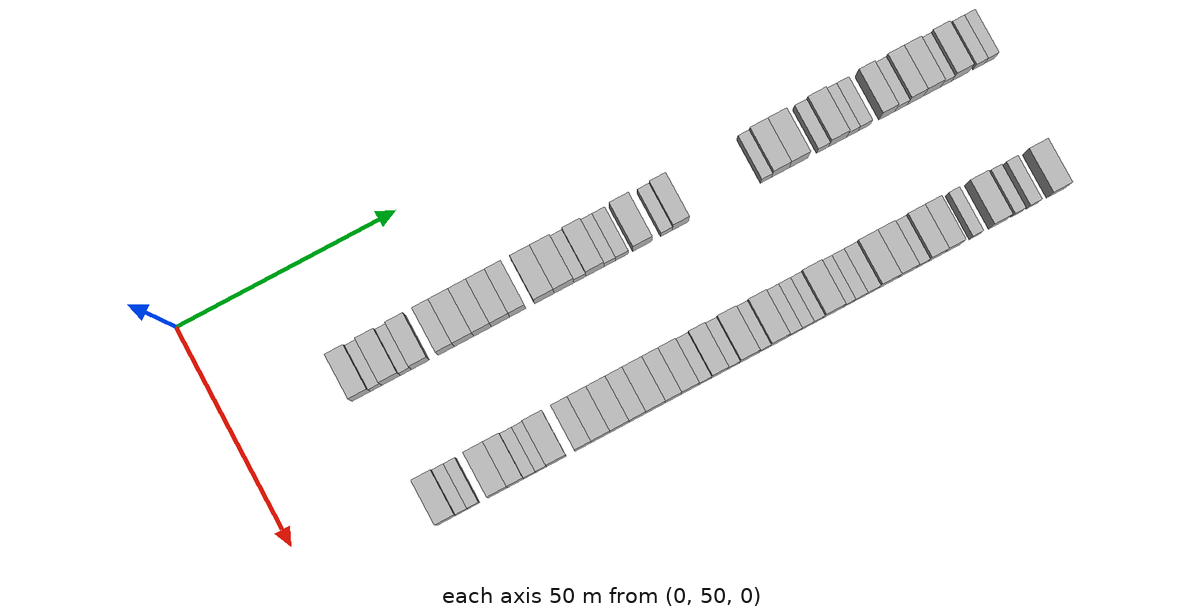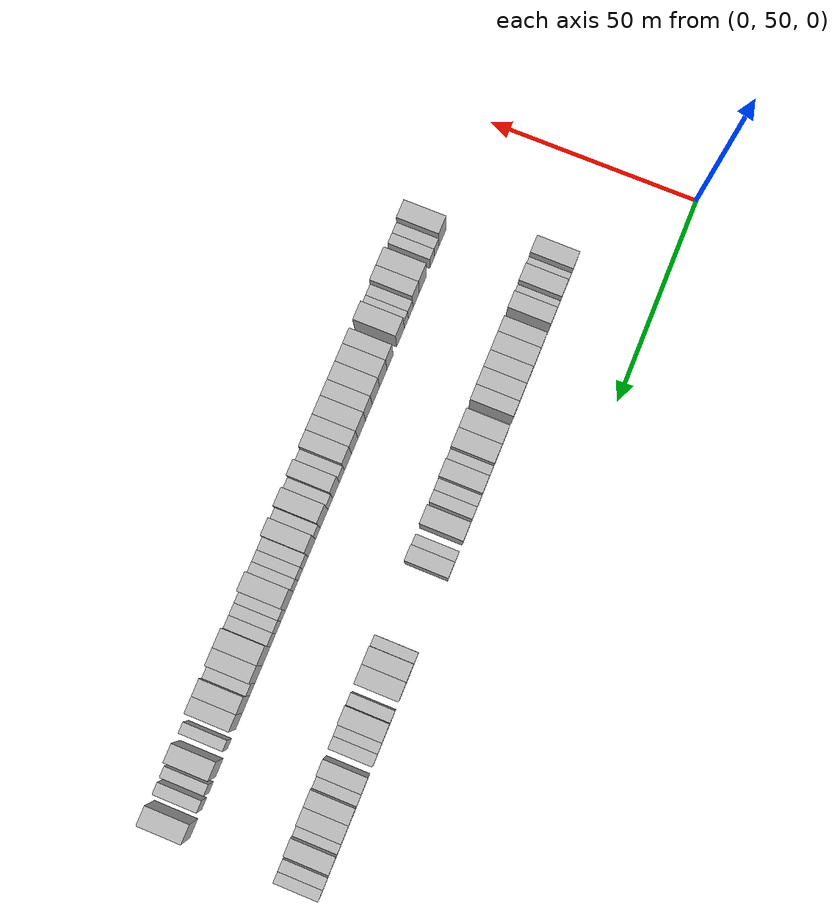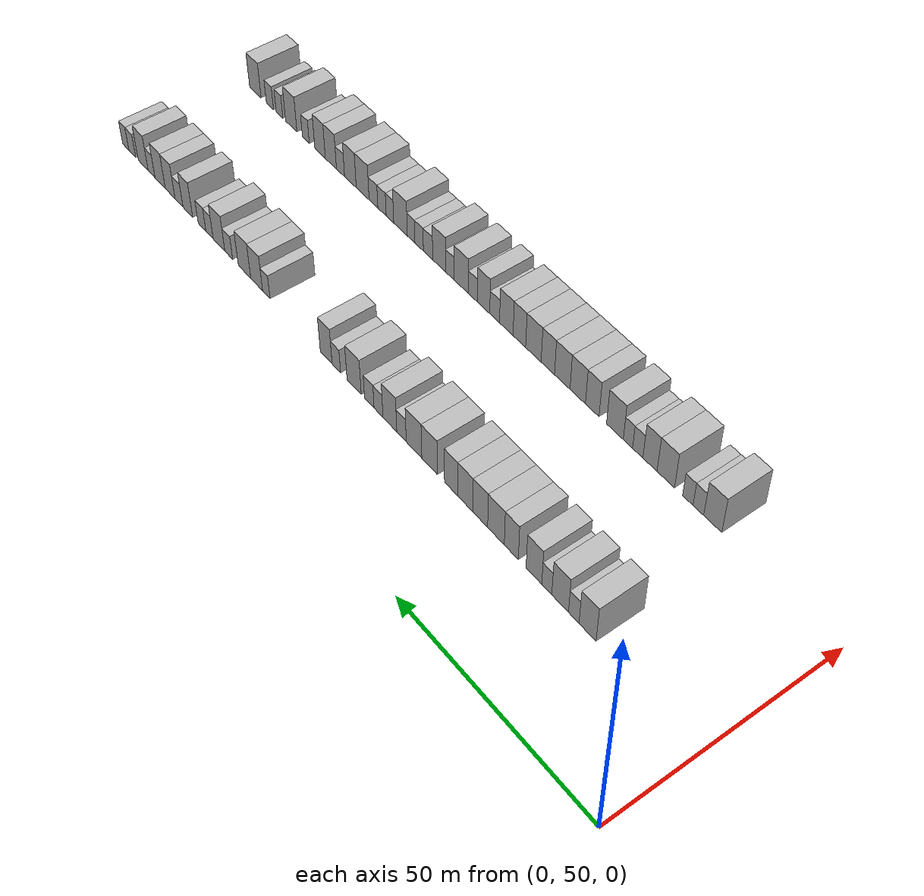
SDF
<sdf version="1.6">
 <world name="default">
  <model name="building_69">
   <static>1</static>
   <pose>25.0000 76.3592 0 0.000000 0.000000 0.000000</pose>
   <link name="link">
    <pose>0 0 4.50 0 0 0</pose>
    <collision name="collision"><geometry><box><size>10.0000 4.1564 9.0000</size></box></geometry></collision>
    <visual name="visual">
     <cast_shadows>0</cast_shadows>
     <geometry><box><size>10.0000 4.1564 9.0000</size></box></geometry>
     <material>
      <script>
       <uri>model://HANNAS_wall/materials/scripts</uri>
       <uri>model://HANNAS_wall/materials/textures</uri>
       <name>vrc/HANNAS_wall</name>
      </script>
     </material>
    </visual>
   </link>
  </model>
  <model name="building_70">
   <static>1</static>
   <pose>25.0000 79.7335 0 0.000000 0.000000 0.000000</pose>
   <link name="link">
    <pose>0 0 3.00 0 0 0</pose>
    <collision name="collision"><geometry><box><size>10.0000 2.5922 6.0000</size></box></geometry></collision>
    <visual name="visual">
     <cast_shadows>0</cast_shadows>
     <geometry><box><size>10.0000 2.5922 6.0000</size></box></geometry>
     <material>
      <script>
       <uri>model://HANNAS_wall/materials/scripts</uri>
       <uri>model://HANNAS_wall/materials/textures</uri>
       <name>vrc/HANNAS_wall</name>
      </script>
     </material>
    </visual>
   </link>
  </model>
  <model name="building_71">
   <static>1</static>
   <pose>25.0000 83.1222 0 0.000000 0.000000 0.000000</pose>
   <link name="link">
    <pose>0 0 4.50 0 0 0</pose>
    <collision name="collision"><geometry><box><size>10.0000 4.1851 9.0000</size></box></geometry></collision>
    <visual name="visual">
     <cast_shadows>0</cast_shadows>
     <geometry><box><size>10.0000 4.1851 9.0000</size></box></geometry>
     <material>
      <script>
       <uri>model://HANNAS_wall/materials/scripts</uri>
       <uri>model://HANNAS_wall/materials/textures</uri>
       <name>vrc/HANNAS_wall</name>
      </script>
     </material>
    </visual>
   </link>
  </model>
  <model name="building_72">
   <static>1</static>
   <pose>25.0000 86.4798 0 0.000000 0.000000 0.000000</pose>
   <link name="link">
    <pose>0 0 3.00 0 0 0</pose>
    <collision name="collision"><geometry><box><size>10.0000 2.5300 6.0000</size></box></geometry></collision>
    <visual name="visual">
     <cast_shadows>0</cast_shadows>
     <geometry><box><size>10.0000 2.5300 6.0000</size></box></geometry>
     <material>
      <script>
       <uri>model://HANNAS_wall/materials/scripts</uri>
       <uri>model://HANNAS_wall/materials/textures</uri>
       <name>vrc/HANNAS_wall</name>
      </script>
     </material>
    </visual>
   </link>
  </model>
  <model name="building_73">
   <static>1</static>
   <pose>25.0000 89.7529 0 0.000000 0.000000 0.000000</pose>
   <link name="link">
    <pose>0 0 4.50 0 0 0</pose>
    <collision name="collision"><geometry><box><size>10.0000 4.0162 9.0000</size></box></geometry></collision>
    <visual name="visual">
     <cast_shadows>0</cast_shadows>
     <geometry><box><size>10.0000 4.0162 9.0000</size></box></geometry>
     <material>
      <script>
       <uri>model://HANNAS_wall/materials/scripts</uri>
       <uri>model://HANNAS_wall/materials/textures</uri>
       <name>vrc/HANNAS_wall</name>
      </script>
     </material>
    </visual>
   </link>
  </model>
  <model name="building_74">
   <static>1</static>
   <pose>25.0000 95.6042 0 0.000000 0.000000 0.000000</pose>
   <link name="link">
    <pose>0 0 4.50 0 0 0</pose>
    <collision name="collision"><geometry><box><size>10.0000 3.6864 9.0000</size></box></geometry></collision>
    <visual name="visual">
     <cast_shadows>0</cast_shadows>
     <geometry><box><size>10.0000 3.6864 9.0000</size></box></geometry>
     <material>
      <script>
       <uri>model://HANNAS_wall/materials/scripts</uri>
       <uri>model://HANNAS_wall/materials/textures</uri>
       <name>vrc/HANNAS_wall</name>
      </script>
     </material>
    </visual>
   </link>
  </model>
  <model name="building_75">
   <static>1</static>
   <pose>25.0000 99.6594 0 0.000000 0.000000 0.000000</pose>
   <link name="link">
    <pose>0 0 4.50 0 0 0</pose>
    <collision name="collision"><geometry><box><size>10.0000 4.4240 9.0000</size></box></geometry></collision>
    <visual name="visual">
     <cast_shadows>0</cast_shadows>
     <geometry><box><size>10.0000 4.4240 9.0000</size></box></geometry>
     <material>
      <script>
       <uri>model://HANNAS_wall/materials/scripts</uri>
       <uri>model://HANNAS_wall/materials/textures</uri>
       <name>vrc/HANNAS_wall</name>
      </script>
     </material>
    </visual>
   </link>
  </model>
  <model name="building_76">
   <static>1</static>
   <pose>25.0000 103.8612 0 0.000000 0.000000 0.000000</pose>
   <link name="link">
    <pose>0 0 4.50 0 0 0</pose>
    <collision name="collision"><geometry><box><size>10.0000 3.9796 9.0000</size></box></geometry></collision>
    <visual name="visual">
     <cast_shadows>0</cast_shadows>
     <geometry><box><size>10.0000 3.9796 9.0000</size></box></geometry>
     <material>
      <script>
       <uri>model://HANNAS_wall/materials/scripts</uri>
       <uri>model://HANNAS_wall/materials/textures</uri>
       <name>vrc/HANNAS_wall</name>
      </script>
     </material>
    </visual>
   </link>
  </model>
  <model name="building_77">
   <static>1</static>
   <pose>25.0000 107.9376 0 0.000000 0.000000 0.000000</pose>
   <link name="link">
    <pose>0 0 4.50 0 0 0</pose>
    <collision name="collision"><geometry><box><size>10.0000 4.1730 9.0000</size></box></geometry></collision>
    <visual name="visual">
     <cast_shadows>0</cast_shadows>
     <geometry><box><size>10.0000 4.1730 9.0000</size></box></geometry>
     <material>
      <script>
       <uri>model://HANNAS_wall/materials/scripts</uri>
       <uri>model://HANNAS_wall/materials/textures</uri>
       <name>vrc/HANNAS_wall</name>
      </script>
     </material>
    </visual>
   </link>
  </model>
  <model name="building_78">
   <static>1</static>
   <pose>25.0000 111.8554 0 0.000000 0.000000 0.000000</pose>
   <link name="link">
    <pose>0 0 4.50 0 0 0</pose>
    <collision name="collision"><geometry><box><size>10.0000 3.6627 9.0000</size></box></geometry></collision>
    <visual name="visual">
     <cast_shadows>0</cast_shadows>
     <geometry><box><size>10.0000 3.6627 9.0000</size></box></geometry>
     <material>
      <script>
       <uri>model://HANNAS_wall/materials/scripts</uri>
       <uri>model://HANNAS_wall/materials/textures</uri>
       <name>vrc/HANNAS_wall</name>
      </script>
     </material>
    </visual>
   </link>
  </model>
  <model name="building_79">
   <static>1</static>
   <pose>25.0000 117.9090 0 0.000000 0.000000 0.000000</pose>
   <link name="link">
    <pose>0 0 4.50 0 0 0</pose>
    <collision name="collision"><geometry><box><size>10.0000 4.4444 9.0000</size></box></geometry></collision>
    <visual name="visual">
     <cast_shadows>0</cast_shadows>
     <geometry><box><size>10.0000 4.4444 9.0000</size></box></geometry>
     <material>
      <script>
       <uri>model://HANNAS_wall/materials/scripts</uri>
       <uri>model://HANNAS_wall/materials/textures</uri>
       <name>vrc/HANNAS_wall</name>
      </script>
     </material>
    </visual>
   </link>
  </model>
  <model name="building_80">
   <static>1</static>
   <pose>25.0000 122.3811 0 0.000000 0.000000 0.000000</pose>
   <link name="link">
    <pose>0 0 4.50 0 0 0</pose>
    <collision name="collision"><geometry><box><size>10.0000 4.4999 9.0000</size></box></geometry></collision>
    <visual name="visual">
     <cast_shadows>0</cast_shadows>
     <geometry><box><size>10.0000 4.4999 9.0000</size></box></geometry>
     <material>
      <script>
       <uri>model://HANNAS_wall/materials/scripts</uri>
       <uri>model://HANNAS_wall/materials/textures</uri>
       <name>vrc/HANNAS_wall</name>
      </script>
     </material>
    </visual>
   </link>
  </model>
  <model name="building_81">
   <static>1</static>
   <pose>25.0000 126.0131 0 0.000000 0.000000 0.000000</pose>
   <link name="link">
    <pose>0 0 3.00 0 0 0</pose>
    <collision name="collision"><geometry><box><size>10.0000 2.7641 6.0000</size></box></geometry></collision>
    <visual name="visual">
     <cast_shadows>0</cast_shadows>
     <geometry><box><size>10.0000 2.7641 6.0000</size></box></geometry>
     <material>
      <script>
       <uri>model://HANNAS_wall/materials/scripts</uri>
       <uri>model://HANNAS_wall/materials/textures</uri>
       <name>vrc/HANNAS_wall</name>
      </script>
     </material>
    </visual>
   </link>
  </model>
  <model name="building_82">
   <static>1</static>
   <pose>25.0000 129.4525 0 0.000000 0.000000 0.000000</pose>
   <link name="link">
    <pose>0 0 4.50 0 0 0</pose>
    <collision name="collision"><geometry><box><size>10.0000 4.1146 9.0000</size></box></geometry></collision>
    <visual name="visual">
     <cast_shadows>0</cast_shadows>
     <geometry><box><size>10.0000 4.1146 9.0000</size></box></geometry>
     <material>
      <script>
       <uri>model://HANNAS_wall/materials/scripts</uri>
       <uri>model://HANNAS_wall/materials/textures</uri>
       <name>vrc/HANNAS_wall</name>
      </script>
     </material>
    </visual>
   </link>
  </model>
  <model name="building_83">
   <static>1</static>
   <pose>25.0000 132.8414 0 0.000000 0.000000 0.000000</pose>
   <link name="link">
    <pose>0 0 3.00 0 0 0</pose>
    <collision name="collision"><geometry><box><size>10.0000 2.6632 6.0000</size></box></geometry></collision>
    <visual name="visual">
     <cast_shadows>0</cast_shadows>
     <geometry><box><size>10.0000 2.6632 6.0000</size></box></geometry>
     <material>
      <script>
       <uri>model://HANNAS_wall/materials/scripts</uri>
       <uri>model://HANNAS_wall/materials/textures</uri>
       <name>vrc/HANNAS_wall</name>
      </script>
     </material>
    </visual>
   </link>
  </model>
  <model name="building_84">
   <static>1</static>
   <pose>25.0000 135.6167 0 0.000000 0.000000 0.000000</pose>
   <link name="link">
    <pose>0 0 3.00 0 0 0</pose>
    <collision name="collision"><geometry><box><size>10.0000 2.8875 6.0000</size></box></geometry></collision>
    <visual name="visual">
     <cast_shadows>0</cast_shadows>
     <geometry><box><size>10.0000 2.8875 6.0000</size></box></geometry>
     <material>
      <script>
       <uri>model://HANNAS_wall/materials/scripts</uri>
       <uri>model://HANNAS_wall/materials/textures</uri>
       <name>vrc/HANNAS_wall</name>
      </script>
     </material>
    </visual>
   </link>
  </model>
  <model name="building_85">
   <static>1</static>
   <pose>25.0000 140.2518 0 0.000000 0.000000 0.000000</pose>
   <link name="link">
    <pose>0 0 4.50 0 0 0</pose>
    <collision name="collision"><geometry><box><size>10.0000 4.3826 9.0000</size></box></geometry></collision>
    <visual name="visual">
     <cast_shadows>0</cast_shadows>
     <geometry><box><size>10.0000 4.3826 9.0000</size></box></geometry>
     <material>
      <script>
       <uri>model://HANNAS_wall/materials/scripts</uri>
       <uri>model://HANNAS_wall/materials/textures</uri>
       <name>vrc/HANNAS_wall</name>
      </script>
     </material>
    </visual>
   </link>
  </model>
  <model name="building_86">
   <static>1</static>
   <pose>25.0000 145.7837 0 0.000000 0.000000 0.000000</pose>
   <link name="link">
    <pose>0 0 3.00 0 0 0</pose>
    <collision name="collision"><geometry><box><size>10.0000 2.6813 6.0000</size></box></geometry></collision>
    <visual name="visual">
     <cast_shadows>0</cast_shadows>
     <geometry><box><size>10.0000 2.6813 6.0000</size></box></geometry>
     <material>
      <script>
       <uri>model://HANNAS_wall/materials/scripts</uri>
       <uri>model://HANNAS_wall/materials/textures</uri>
       <name>vrc/HANNAS_wall</name>
      </script>
     </material>
    </visual>
   </link>
  </model>
  <model name="building_87">
   <static>1</static>
   <pose>25.0000 148.9805 0 0.000000 0.000000 0.000000</pose>
   <link name="link">
    <pose>0 0 4.50 0 0 0</pose>
    <collision name="collision"><geometry><box><size>10.0000 3.7122 9.0000</size></box></geometry></collision>
    <visual name="visual">
     <cast_shadows>0</cast_shadows>
     <geometry><box><size>10.0000 3.7122 9.0000</size></box></geometry>
     <material>
      <script>
       <uri>model://HANNAS_wall/materials/scripts</uri>
       <uri>model://HANNAS_wall/materials/textures</uri>
       <name>vrc/HANNAS_wall</name>
      </script>
     </material>
    </visual>
   </link>
  </model>
  <model name="building_88">
   <static>1</static>
   <pose>25.0000 168.6250 0 0.000000 0.000000 0.000000</pose>
   <link name="link">
    <pose>0 0 3.00 0 0 0</pose>
    <collision name="collision"><geometry><box><size>10.0000 2.5256 6.0000</size></box></geometry></collision>
    <visual name="visual">
     <cast_shadows>0</cast_shadows>
     <geometry><box><size>10.0000 2.5256 6.0000</size></box></geometry>
     <material>
      <script>
       <uri>model://HANNAS_wall/materials/scripts</uri>
       <uri>model://HANNAS_wall/materials/textures</uri>
       <name>vrc/HANNAS_wall</name>
      </script>
     </material>
    </visual>
   </link>
  </model>
  <model name="building_89">
   <static>1</static>
   <pose>25.0000 171.9140 0 0.000000 0.000000 0.000000</pose>
   <link name="link">
    <pose>0 0 4.50 0 0 0</pose>
    <collision name="collision"><geometry><box><size>10.0000 4.0523 9.0000</size></box></geometry></collision>
    <visual name="visual">
     <cast_shadows>0</cast_shadows>
     <geometry><box><size>10.0000 4.0523 9.0000</size></box></geometry>
     <material>
      <script>
       <uri>model://HANNAS_wall/materials/scripts</uri>
       <uri>model://HANNAS_wall/materials/textures</uri>
       <name>vrc/HANNAS_wall</name>
      </script>
     </material>
    </visual>
   </link>
  </model>
  <model name="building_90">
   <static>1</static>
   <pose>25.0000 176.1013 0 0.000000 0.000000 0.000000</pose>
   <link name="link">
    <pose>0 0 4.50 0 0 0</pose>
    <collision name="collision"><geometry><box><size>10.0000 4.3224 9.0000</size></box></geometry></collision>
    <visual name="visual">
     <cast_shadows>0</cast_shadows>
     <geometry><box><size>10.0000 4.3224 9.0000</size></box></geometry>
     <material>
      <script>
       <uri>model://HANNAS_wall/materials/scripts</uri>
       <uri>model://HANNAS_wall/materials/textures</uri>
       <name>vrc/HANNAS_wall</name>
      </script>
     </material>
    </visual>
   </link>
  </model>
  <model name="building_91">
   <static>1</static>
   <pose>25.0000 181.6408 0 0.000000 0.000000 0.000000</pose>
   <link name="link">
    <pose>0 0 3.00 0 0 0</pose>
    <collision name="collision"><geometry><box><size>10.0000 2.7566 6.0000</size></box></geometry></collision>
    <visual name="visual">
     <cast_shadows>0</cast_shadows>
     <geometry><box><size>10.0000 2.7566 6.0000</size></box></geometry>
     <material>
      <script>
       <uri>model://HANNAS_wall/materials/scripts</uri>
       <uri>model://HANNAS_wall/materials/textures</uri>
       <name>vrc/HANNAS_wall</name>
      </script>
     </material>
    </visual>
   </link>
  </model>
  <model name="building_92">
   <static>1</static>
   <pose>25.0000 185.1076 0 0.000000 0.000000 0.000000</pose>
   <link name="link">
    <pose>0 0 4.50 0 0 0</pose>
    <collision name="collision"><geometry><box><size>10.0000 4.1772 9.0000</size></box></geometry></collision>
    <visual name="visual">
     <cast_shadows>0</cast_shadows>
     <geometry><box><size>10.0000 4.1772 9.0000</size></box></geometry>
     <material>
      <script>
       <uri>model://HANNAS_wall/materials/scripts</uri>
       <uri>model://HANNAS_wall/materials/textures</uri>
       <name>vrc/HANNAS_wall</name>
      </script>
     </material>
    </visual>
   </link>
  </model>
  <model name="building_93">
   <static>1</static>
   <pose>25.0000 188.5227 0 0.000000 0.000000 0.000000</pose>
   <link name="link">
    <pose>0 0 3.00 0 0 0</pose>
    <collision name="collision"><geometry><box><size>10.0000 2.6529 6.0000</size></box></geometry></collision>
    <visual name="visual">
     <cast_shadows>0</cast_shadows>
     <geometry><box><size>10.0000 2.6529 6.0000</size></box></geometry>
     <material>
      <script>
       <uri>model://HANNAS_wall/materials/scripts</uri>
       <uri>model://HANNAS_wall/materials/textures</uri>
       <name>vrc/HANNAS_wall</name>
      </script>
     </material>
    </visual>
   </link>
  </model>
  <model name="building_94">
   <static>1</static>
   <pose>25.0000 191.2534 0 0.000000 0.000000 0.000000</pose>
   <link name="link">
    <pose>0 0 3.00 0 0 0</pose>
    <collision name="collision"><geometry><box><size>10.0000 2.8085 6.0000</size></box></geometry></collision>
    <visual name="visual">
     <cast_shadows>0</cast_shadows>
     <geometry><box><size>10.0000 2.8085 6.0000</size></box></geometry>
     <material>
      <script>
       <uri>model://HANNAS_wall/materials/scripts</uri>
       <uri>model://HANNAS_wall/materials/textures</uri>
       <name>vrc/HANNAS_wall</name>
      </script>
     </material>
    </visual>
   </link>
  </model>
  <model name="building_95">
   <static>1</static>
   <pose>25.0000 196.4663 0 0.000000 0.000000 0.000000</pose>
   <link name="link">
    <pose>0 0 4.50 0 0 0</pose>
    <collision name="collision"><geometry><box><size>10.0000 3.6174 9.0000</size></box></geometry></collision>
    <visual name="visual">
     <cast_shadows>0</cast_shadows>
     <geometry><box><size>10.0000 3.6174 9.0000</size></box></geometry>
     <material>
      <script>
       <uri>model://HANNAS_wall/materials/scripts</uri>
       <uri>model://HANNAS_wall/materials/textures</uri>
       <name>vrc/HANNAS_wall</name>
      </script>
     </material>
    </visual>
   </link>
  </model>
  <model name="building_96">
   <static>1</static>
   <pose>25.0000 199.7442 0 0.000000 0.000000 0.000000</pose>
   <link name="link">
    <pose>0 0 3.00 0 0 0</pose>
    <collision name="collision"><geometry><box><size>10.0000 2.9382 6.0000</size></box></geometry></collision>
    <visual name="visual">
     <cast_shadows>0</cast_shadows>
     <geometry><box><size>10.0000 2.9382 6.0000</size></box></geometry>
     <material>
      <script>
       <uri>model://HANNAS_wall/materials/scripts</uri>
       <uri>model://HANNAS_wall/materials/textures</uri>
       <name>vrc/HANNAS_wall</name>
      </script>
     </material>
    </visual>
   </link>
  </model>
  <model name="building_97">
   <static>1</static>
   <pose>25.0000 203.0771 0 0.000000 0.000000 0.000000</pose>
   <link name="link">
    <pose>0 0 4.50 0 0 0</pose>
    <collision name="collision"><geometry><box><size>10.0000 3.7277 9.0000</size></box></geometry></collision>
    <visual name="visual">
     <cast_shadows>0</cast_shadows>
     <geometry><box><size>10.0000 3.7277 9.0000</size></box></geometry>
     <material>
      <script>
       <uri>model://HANNAS_wall/materials/scripts</uri>
       <uri>model://HANNAS_wall/materials/textures</uri>
       <name>vrc/HANNAS_wall</name>
      </script>
     </material>
    </visual>
   </link>
  </model>
  <model name="building_98">
   <static>1</static>
   <pose>25.0000 206.9092 0 0.000000 0.000000 0.000000</pose>
   <link name="link">
    <pose>0 0 4.50 0 0 0</pose>
    <collision name="collision"><geometry><box><size>10.0000 3.9366 9.0000</size></box></geometry></collision>
    <visual name="visual">
     <cast_shadows>0</cast_shadows>
     <geometry><box><size>10.0000 3.9366 9.0000</size></box></geometry>
     <material>
      <script>
       <uri>model://HANNAS_wall/materials/scripts</uri>
       <uri>model://HANNAS_wall/materials/textures</uri>
       <name>vrc/HANNAS_wall</name>
      </script>
     </material>
    </visual>
   </link>
  </model>
  <model name="building_99">
   <static>1</static>
   <pose>25.0000 210.2032 0 0.000000 0.000000 0.000000</pose>
   <link name="link">
    <pose>0 0 3.00 0 0 0</pose>
    <collision name="collision"><geometry><box><size>10.0000 2.6513 6.0000</size></box></geometry></collision>
    <visual name="visual">
     <cast_shadows>0</cast_shadows>
     <geometry><box><size>10.0000 2.6513 6.0000</size></box></geometry>
     <material>
      <script>
       <uri>model://HANNAS_wall/materials/scripts</uri>
       <uri>model://HANNAS_wall/materials/textures</uri>
       <name>vrc/HANNAS_wall</name>
      </script>
     </material>
    </visual>
   </link>
  </model>
  <model name="building_100">
   <static>1</static>
   <pose>25.0000 213.4750 0 0.000000 0.000000 0.000000</pose>
   <link name="link">
    <pose>0 0 4.50 0 0 0</pose>
    <collision name="collision"><geometry><box><size>10.0000 3.8925 9.0000</size></box></geometry></collision>
    <visual name="visual">
     <cast_shadows>0</cast_shadows>
     <geometry><box><size>10.0000 3.8925 9.0000</size></box></geometry>
     <material>
      <script>
       <uri>model://HANNAS_wall/materials/scripts</uri>
       <uri>model://HANNAS_wall/materials/textures</uri>
       <name>vrc/HANNAS_wall</name>
      </script>
     </material>
    </visual>
   </link>
  </model>
  <model name="building_101">
   <static>1</static>
   <pose>25.0000 217.7741 0 0.000000 0.000000 0.000000</pose>
   <link name="link">
    <pose>0 0 3.00 0 0 0</pose>
    <collision name="collision"><geometry><box><size>10.0000 2.7057 6.0000</size></box></geometry></collision>
    <visual name="visual">
     <cast_shadows>0</cast_shadows>
     <geometry><box><size>10.0000 2.7057 6.0000</size></box></geometry>
     <material>
      <script>
       <uri>model://HANNAS_wall/materials/scripts</uri>
       <uri>model://HANNAS_wall/materials/textures</uri>
       <name>vrc/HANNAS_wall</name>
      </script>
     </material>
    </visual>
   </link>
  </model>
  <model name="building_102">
   <static>1</static>
   <pose>25.0000 220.3564 0 0.000000 0.000000 0.000000</pose>
   <link name="link">
    <pose>0 0 3.00 0 0 0</pose>
    <collision name="collision"><geometry><box><size>10.0000 2.4588 6.0000</size></box></geometry></collision>
    <visual name="visual">
     <cast_shadows>0</cast_shadows>
     <geometry><box><size>10.0000 2.4588 6.0000</size></box></geometry>
     <material>
      <script>
       <uri>model://HANNAS_wall/materials/scripts</uri>
       <uri>model://HANNAS_wall/materials/textures</uri>
       <name>vrc/HANNAS_wall</name>
      </script>
     </material>
    </visual>
   </link>
  </model>
  <model name="building_177">
   <static>1</static>
   <pose>55.0000 79.9224 0 0.000000 0.000000 0.000000</pose>
   <link name="link">
    <pose>0 0 4.50 0 0 0</pose>
    <collision name="collision"><geometry><box><size>10.0000 4.3881 9.0000</size></box></geometry></collision>
    <visual name="visual">
     <cast_shadows>0</cast_shadows>
     <geometry><box><size>10.0000 4.3881 9.0000</size></box></geometry>
     <material>
      <script>
       <uri>model://HANNAS_wall/materials/scripts</uri>
       <uri>model://HANNAS_wall/materials/textures</uri>
       <name>vrc/HANNAS_wall</name>
      </script>
     </material>
    </visual>
   </link>
  </model>
  <model name="building_178">
   <static>1</static>
   <pose>55.0000 83.4172 0 0.000000 0.000000 0.000000</pose>
   <link name="link">
    <pose>0 0 3.00 0 0 0</pose>
    <collision name="collision"><geometry><box><size>10.0000 2.6017 6.0000</size></box></geometry></collision>
    <visual name="visual">
     <cast_shadows>0</cast_shadows>
     <geometry><box><size>10.0000 2.6017 6.0000</size></box></geometry>
     <material>
      <script>
       <uri>model://HANNAS_wall/materials/scripts</uri>
       <uri>model://HANNAS_wall/materials/textures</uri>
       <name>vrc/HANNAS_wall</name>
      </script>
     </material>
    </visual>
   </link>
  </model>
  <model name="building_179">
   <static>1</static>
   <pose>55.0000 86.0109 0 0.000000 0.000000 0.000000</pose>
   <link name="link">
    <pose>0 0 3.00 0 0 0</pose>
    <collision name="collision"><geometry><box><size>10.0000 2.5856 6.0000</size></box></geometry></collision>
    <visual name="visual">
     <cast_shadows>0</cast_shadows>
     <geometry><box><size>10.0000 2.5856 6.0000</size></box></geometry>
     <material>
      <script>
       <uri>model://HANNAS_wall/materials/scripts</uri>
       <uri>model://HANNAS_wall/materials/textures</uri>
       <name>vrc/HANNAS_wall</name>
      </script>
     </material>
    </visual>
   </link>
  </model>
  <model name="building_180">
   <static>1</static>
   <pose>55.0000 91.5116 0 0.000000 0.000000 0.000000</pose>
   <link name="link">
    <pose>0 0 4.50 0 0 0</pose>
    <collision name="collision"><geometry><box><size>10.0000 4.4158 9.0000</size></box></geometry></collision>
    <visual name="visual">
     <cast_shadows>0</cast_shadows>
     <geometry><box><size>10.0000 4.4158 9.0000</size></box></geometry>
     <material>
      <script>
       <uri>model://HANNAS_wall/materials/scripts</uri>
       <uri>model://HANNAS_wall/materials/textures</uri>
       <name>vrc/HANNAS_wall</name>
      </script>
     </material>
    </visual>
   </link>
  </model>
  <model name="building_181">
   <static>1</static>
   <pose>55.0000 95.5330 0 0.000000 0.000000 0.000000</pose>
   <link name="link">
    <pose>0 0 4.50 0 0 0</pose>
    <collision name="collision"><geometry><box><size>10.0000 3.6270 9.0000</size></box></geometry></collision>
    <visual name="visual">
     <cast_shadows>0</cast_shadows>
     <geometry><box><size>10.0000 3.6270 9.0000</size></box></geometry>
     <material>
      <script>
       <uri>model://HANNAS_wall/materials/scripts</uri>
       <uri>model://HANNAS_wall/materials/textures</uri>
       <name>vrc/HANNAS_wall</name>
      </script>
     </material>
    </visual>
   </link>
  </model>
  <model name="building_182">
   <static>1</static>
   <pose>55.0000 98.6813 0 0.000000 0.000000 0.000000</pose>
   <link name="link">
    <pose>0 0 3.00 0 0 0</pose>
    <collision name="collision"><geometry><box><size>10.0000 2.6696 6.0000</size></box></geometry></collision>
    <visual name="visual">
     <cast_shadows>0</cast_shadows>
     <geometry><box><size>10.0000 2.6696 6.0000</size></box></geometry>
     <material>
      <script>
       <uri>model://HANNAS_wall/materials/scripts</uri>
       <uri>model://HANNAS_wall/materials/textures</uri>
       <name>vrc/HANNAS_wall</name>
      </script>
     </material>
    </visual>
   </link>
  </model>
  <model name="building_183">
   <static>1</static>
   <pose>55.0000 101.2322 0 0.000000 0.000000 0.000000</pose>
   <link name="link">
    <pose>0 0 3.00 0 0 0</pose>
    <collision name="collision"><geometry><box><size>10.0000 2.4321 6.0000</size></box></geometry></collision>
    <visual name="visual">
     <cast_shadows>0</cast_shadows>
     <geometry><box><size>10.0000 2.4321 6.0000</size></box></geometry>
     <material>
      <script>
       <uri>model://HANNAS_wall/materials/scripts</uri>
       <uri>model://HANNAS_wall/materials/textures</uri>
       <name>vrc/HANNAS_wall</name>
      </script>
     </material>
    </visual>
   </link>
  </model>
  <model name="building_184">
   <static>1</static>
   <pose>55.0000 104.6571 0 0.000000 0.000000 0.000000</pose>
   <link name="link">
    <pose>0 0 4.50 0 0 0</pose>
    <collision name="collision"><geometry><box><size>10.0000 4.4179 9.0000</size></box></geometry></collision>
    <visual name="visual">
     <cast_shadows>0</cast_shadows>
     <geometry><box><size>10.0000 4.4179 9.0000</size></box></geometry>
     <material>
      <script>
       <uri>model://HANNAS_wall/materials/scripts</uri>
       <uri>model://HANNAS_wall/materials/textures</uri>
       <name>vrc/HANNAS_wall</name>
      </script>
     </material>
    </visual>
   </link>
  </model>
  <model name="building_185">
   <static>1</static>
   <pose>55.0000 110.7081 0 0.000000 0.000000 0.000000</pose>
   <link name="link">
    <pose>0 0 4.50 0 0 0</pose>
    <collision name="collision"><geometry><box><size>10.0000 3.6840 9.0000</size></box></geometry></collision>
    <visual name="visual">
     <cast_shadows>0</cast_shadows>
     <geometry><box><size>10.0000 3.6840 9.0000</size></box></geometry>
     <material>
      <script>
       <uri>model://HANNAS_wall/materials/scripts</uri>
       <uri>model://HANNAS_wall/materials/textures</uri>
       <name>vrc/HANNAS_wall</name>
      </script>
     </material>
    </visual>
   </link>
  </model>
  <model name="building_186">
   <static>1</static>
   <pose>55.0000 114.6606 0 0.000000 0.000000 0.000000</pose>
   <link name="link">
    <pose>0 0 4.50 0 0 0</pose>
    <collision name="collision"><geometry><box><size>10.0000 4.2210 9.0000</size></box></geometry></collision>
    <visual name="visual">
     <cast_shadows>0</cast_shadows>
     <geometry><box><size>10.0000 4.2210 9.0000</size></box></geometry>
     <material>
      <script>
       <uri>model://HANNAS_wall/materials/scripts</uri>
       <uri>model://HANNAS_wall/materials/textures</uri>
       <name>vrc/HANNAS_wall</name>
      </script>
     </material>
    </visual>
   </link>
  </model>
  <model name="building_187">
   <static>1</static>
   <pose>55.0000 118.9229 0 0.000000 0.000000 0.000000</pose>
   <link name="link">
    <pose>0 0 4.50 0 0 0</pose>
    <collision name="collision"><geometry><box><size>10.0000 4.3037 9.0000</size></box></geometry></collision>
    <visual name="visual">
     <cast_shadows>0</cast_shadows>
     <geometry><box><size>10.0000 4.3037 9.0000</size></box></geometry>
     <material>
      <script>
       <uri>model://HANNAS_wall/materials/scripts</uri>
       <uri>model://HANNAS_wall/materials/textures</uri>
       <name>vrc/HANNAS_wall</name>
      </script>
     </material>
    </visual>
   </link>
  </model>
  <model name="building_188">
   <static>1</static>
   <pose>55.0000 122.9610 0 0.000000 0.000000 0.000000</pose>
   <link name="link">
    <pose>0 0 4.50 0 0 0</pose>
    <collision name="collision"><geometry><box><size>10.0000 3.7725 9.0000</size></box></geometry></collision>
    <visual name="visual">
     <cast_shadows>0</cast_shadows>
     <geometry><box><size>10.0000 3.7725 9.0000</size></box></geometry>
     <material>
      <script>
       <uri>model://HANNAS_wall/materials/scripts</uri>
       <uri>model://HANNAS_wall/materials/textures</uri>
       <name>vrc/HANNAS_wall</name>
      </script>
     </material>
    </visual>
   </link>
  </model>
  <model name="building_189">
   <static>1</static>
   <pose>55.0000 127.0583 0 0.000000 0.000000 0.000000</pose>
   <link name="link">
    <pose>0 0 4.50 0 0 0</pose>
    <collision name="collision"><geometry><box><size>10.0000 4.4222 9.0000</size></box></geometry></collision>
    <visual name="visual">
     <cast_shadows>0</cast_shadows>
     <geometry><box><size>10.0000 4.4222 9.0000</size></box></geometry>
     <material>
      <script>
       <uri>model://HANNAS_wall/materials/scripts</uri>
       <uri>model://HANNAS_wall/materials/textures</uri>
       <name>vrc/HANNAS_wall</name>
      </script>
     </material>
    </visual>
   </link>
  </model>
  <model name="building_190">
   <static>1</static>
   <pose>55.0000 131.0868 0 0.000000 0.000000 0.000000</pose>
   <link name="link">
    <pose>0 0 4.50 0 0 0</pose>
    <collision name="collision"><geometry><box><size>10.0000 3.6348 9.0000</size></box></geometry></collision>
    <visual name="visual">
     <cast_shadows>0</cast_shadows>
     <geometry><box><size>10.0000 3.6348 9.0000</size></box></geometry>
     <material>
      <script>
       <uri>model://HANNAS_wall/materials/scripts</uri>
       <uri>model://HANNAS_wall/materials/textures</uri>
       <name>vrc/HANNAS_wall</name>
      </script>
     </material>
    </visual>
   </link>
  </model>
  <model name="building_191">
   <static>1</static>
   <pose>55.0000 134.8900 0 0.000000 0.000000 0.000000</pose>
   <link name="link">
    <pose>0 0 4.50 0 0 0</pose>
    <collision name="collision"><geometry><box><size>10.0000 3.9717 9.0000</size></box></geometry></collision>
    <visual name="visual">
     <cast_shadows>0</cast_shadows>
     <geometry><box><size>10.0000 3.9717 9.0000</size></box></geometry>
     <material>
      <script>
       <uri>model://HANNAS_wall/materials/scripts</uri>
       <uri>model://HANNAS_wall/materials/textures</uri>
       <name>vrc/HANNAS_wall</name>
      </script>
     </material>
    </visual>
   </link>
  </model>
  <model name="building_192">
   <static>1</static>
   <pose>55.0000 138.3265 0 0.000000 0.000000 0.000000</pose>
   <link name="link">
    <pose>0 0 3.00 0 0 0</pose>
    <collision name="collision"><geometry><box><size>10.0000 2.9013 6.0000</size></box></geometry></collision>
    <visual name="visual">
     <cast_shadows>0</cast_shadows>
     <geometry><box><size>10.0000 2.9013 6.0000</size></box></geometry>
     <material>
      <script>
       <uri>model://HANNAS_wall/materials/scripts</uri>
       <uri>model://HANNAS_wall/materials/textures</uri>
       <name>vrc/HANNAS_wall</name>
      </script>
     </material>
    </visual>
   </link>
  </model>
  <model name="building_193">
   <static>1</static>
   <pose>55.0000 141.6423 0 0.000000 0.000000 0.000000</pose>
   <link name="link">
    <pose>0 0 4.50 0 0 0</pose>
    <collision name="collision"><geometry><box><size>10.0000 3.7304 9.0000</size></box></geometry></collision>
    <visual name="visual">
     <cast_shadows>0</cast_shadows>
     <geometry><box><size>10.0000 3.7304 9.0000</size></box></geometry>
     <material>
      <script>
       <uri>model://HANNAS_wall/materials/scripts</uri>
       <uri>model://HANNAS_wall/materials/textures</uri>
       <name>vrc/HANNAS_wall</name>
      </script>
     </material>
    </visual>
   </link>
  </model>
  <model name="building_194">
   <static>1</static>
   <pose>55.0000 144.8680 0 0.000000 0.000000 0.000000</pose>
   <link name="link">
    <pose>0 0 3.00 0 0 0</pose>
    <collision name="collision"><geometry><box><size>10.0000 2.7209 6.0000</size></box></geometry></collision>
    <visual name="visual">
     <cast_shadows>0</cast_shadows>
     <geometry><box><size>10.0000 2.7209 6.0000</size></box></geometry>
     <material>
      <script>
       <uri>model://HANNAS_wall/materials/scripts</uri>
       <uri>model://HANNAS_wall/materials/textures</uri>
       <name>vrc/HANNAS_wall</name>
      </script>
     </material>
    </visual>
   </link>
  </model>
  <model name="building_195">
   <static>1</static>
   <pose>55.0000 148.3884 0 0.000000 0.000000 0.000000</pose>
   <link name="link">
    <pose>0 0 4.50 0 0 0</pose>
    <collision name="collision"><geometry><box><size>10.0000 4.3199 9.0000</size></box></geometry></collision>
    <visual name="visual">
     <cast_shadows>0</cast_shadows>
     <geometry><box><size>10.0000 4.3199 9.0000</size></box></geometry>
     <material>
      <script>
       <uri>model://HANNAS_wall/materials/scripts</uri>
       <uri>model://HANNAS_wall/materials/textures</uri>
       <name>vrc/HANNAS_wall</name>
      </script>
     </material>
    </visual>
   </link>
  </model>
  <model name="building_196">
   <static>1</static>
   <pose>55.0000 151.8838 0 0.000000 0.000000 0.000000</pose>
   <link name="link">
    <pose>0 0 3.00 0 0 0</pose>
    <collision name="collision"><geometry><box><size>10.0000 2.6708 6.0000</size></box></geometry></collision>
    <visual name="visual">
     <cast_shadows>0</cast_shadows>
     <geometry><box><size>10.0000 2.6708 6.0000</size></box></geometry>
     <material>
      <script>
       <uri>model://HANNAS_wall/materials/scripts</uri>
       <uri>model://HANNAS_wall/materials/textures</uri>
       <name>vrc/HANNAS_wall</name>
      </script>
     </material>
    </visual>
   </link>
  </model>
  <model name="building_197">
   <static>1</static>
   <pose>55.0000 155.2621 0 0.000000 0.000000 0.000000</pose>
   <link name="link">
    <pose>0 0 4.50 0 0 0</pose>
    <collision name="collision"><geometry><box><size>10.0000 4.0859 9.0000</size></box></geometry></collision>
    <visual name="visual">
     <cast_shadows>0</cast_shadows>
     <geometry><box><size>10.0000 4.0859 9.0000</size></box></geometry>
     <material>
      <script>
       <uri>model://HANNAS_wall/materials/scripts</uri>
       <uri>model://HANNAS_wall/materials/textures</uri>
       <name>vrc/HANNAS_wall</name>
      </script>
     </material>
    </visual>
   </link>
  </model>
  <model name="building_198">
   <static>1</static>
   <pose>55.0000 158.7816 0 0.000000 0.000000 0.000000</pose>
   <link name="link">
    <pose>0 0 3.00 0 0 0</pose>
    <collision name="collision"><geometry><box><size>10.0000 2.9530 6.0000</size></box></geometry></collision>
    <visual name="visual">
     <cast_shadows>0</cast_shadows>
     <geometry><box><size>10.0000 2.9530 6.0000</size></box></geometry>
     <material>
      <script>
       <uri>model://HANNAS_wall/materials/scripts</uri>
       <uri>model://HANNAS_wall/materials/textures</uri>
       <name>vrc/HANNAS_wall</name>
      </script>
     </material>
    </visual>
   </link>
  </model>
  <model name="building_199">
   <static>1</static>
   <pose>55.0000 161.6112 0 0.000000 0.000000 0.000000</pose>
   <link name="link">
    <pose>0 0 3.00 0 0 0</pose>
    <collision name="collision"><geometry><box><size>10.0000 2.7062 6.0000</size></box></geometry></collision>
    <visual name="visual">
     <cast_shadows>0</cast_shadows>
     <geometry><box><size>10.0000 2.7062 6.0000</size></box></geometry>
     <material>
      <script>
       <uri>model://HANNAS_wall/materials/scripts</uri>
       <uri>model://HANNAS_wall/materials/textures</uri>
       <name>vrc/HANNAS_wall</name>
      </script>
     </material>
    </visual>
   </link>
  </model>
  <model name="building_200">
   <static>1</static>
   <pose>55.0000 164.1933 0 0.000000 0.000000 0.000000</pose>
   <link name="link">
    <pose>0 0 3.00 0 0 0</pose>
    <collision name="collision"><geometry><box><size>10.0000 2.4579 6.0000</size></box></geometry></collision>
    <visual name="visual">
     <cast_shadows>0</cast_shadows>
     <geometry><box><size>10.0000 2.4579 6.0000</size></box></geometry>
     <material>
      <script>
       <uri>model://HANNAS_wall/materials/scripts</uri>
       <uri>model://HANNAS_wall/materials/textures</uri>
       <name>vrc/HANNAS_wall</name>
      </script>
     </material>
    </visual>
   </link>
  </model>
  <model name="building_201">
   <static>1</static>
   <pose>55.0000 167.6428 0 0.000000 0.000000 0.000000</pose>
   <link name="link">
    <pose>0 0 4.50 0 0 0</pose>
    <collision name="collision"><geometry><box><size>10.0000 4.4412 9.0000</size></box></geometry></collision>
    <visual name="visual">
     <cast_shadows>0</cast_shadows>
     <geometry><box><size>10.0000 4.4412 9.0000</size></box></geometry>
     <material>
      <script>
       <uri>model://HANNAS_wall/materials/scripts</uri>
       <uri>model://HANNAS_wall/materials/textures</uri>
       <name>vrc/HANNAS_wall</name>
      </script>
     </material>
    </visual>
   </link>
  </model>
  <model name="building_202">
   <static>1</static>
   <pose>55.0000 171.1110 0 0.000000 0.000000 0.000000</pose>
   <link name="link">
    <pose>0 0 3.00 0 0 0</pose>
    <collision name="collision"><geometry><box><size>10.0000 2.4951 6.0000</size></box></geometry></collision>
    <visual name="visual">
     <cast_shadows>0</cast_shadows>
     <geometry><box><size>10.0000 2.4951 6.0000</size></box></geometry>
     <material>
      <script>
       <uri>model://HANNAS_wall/materials/scripts</uri>
       <uri>model://HANNAS_wall/materials/textures</uri>
       <name>vrc/HANNAS_wall</name>
      </script>
     </material>
    </visual>
   </link>
  </model>
  <model name="building_203">
   <static>1</static>
   <pose>55.0000 173.7527 0 0.000000 0.000000 0.000000</pose>
   <link name="link">
    <pose>0 0 3.00 0 0 0</pose>
    <collision name="collision"><geometry><box><size>10.0000 2.7884 6.0000</size></box></geometry></collision>
    <visual name="visual">
     <cast_shadows>0</cast_shadows>
     <geometry><box><size>10.0000 2.7884 6.0000</size></box></geometry>
     <material>
      <script>
       <uri>model://HANNAS_wall/materials/scripts</uri>
       <uri>model://HANNAS_wall/materials/textures</uri>
       <name>vrc/HANNAS_wall</name>
      </script>
     </material>
    </visual>
   </link>
  </model>
  <model name="building_204">
   <static>1</static>
   <pose>55.0000 176.6191 0 0.000000 0.000000 0.000000</pose>
   <link name="link">
    <pose>0 0 3.00 0 0 0</pose>
    <collision name="collision"><geometry><box><size>10.0000 2.9443 6.0000</size></box></geometry></collision>
    <visual name="visual">
     <cast_shadows>0</cast_shadows>
     <geometry><box><size>10.0000 2.9443 6.0000</size></box></geometry>
     <material>
      <script>
       <uri>model://HANNAS_wall/materials/scripts</uri>
       <uri>model://HANNAS_wall/materials/textures</uri>
       <name>vrc/HANNAS_wall</name>
      </script>
     </material>
    </visual>
   </link>
  </model>
  <model name="building_205">
   <static>1</static>
   <pose>55.0000 180.2801 0 0.000000 0.000000 0.000000</pose>
   <link name="link">
    <pose>0 0 4.50 0 0 0</pose>
    <collision name="collision"><geometry><box><size>10.0000 4.3777 9.0000</size></box></geometry></collision>
    <visual name="visual">
     <cast_shadows>0</cast_shadows>
     <geometry><box><size>10.0000 4.3777 9.0000</size></box></geometry>
     <material>
      <script>
       <uri>model://HANNAS_wall/materials/scripts</uri>
       <uri>model://HANNAS_wall/materials/textures</uri>
       <name>vrc/HANNAS_wall</name>
      </script>
     </material>
    </visual>
   </link>
  </model>
  <model name="building_206">
   <static>1</static>
   <pose>55.0000 184.4689 0 0.000000 0.000000 0.000000</pose>
   <link name="link">
    <pose>0 0 4.50 0 0 0</pose>
    <collision name="collision"><geometry><box><size>10.0000 3.9998 9.0000</size></box></geometry></collision>
    <visual name="visual">
     <cast_shadows>0</cast_shadows>
     <geometry><box><size>10.0000 3.9998 9.0000</size></box></geometry>
     <material>
      <script>
       <uri>model://HANNAS_wall/materials/scripts</uri>
       <uri>model://HANNAS_wall/materials/textures</uri>
       <name>vrc/HANNAS_wall</name>
      </script>
     </material>
    </visual>
   </link>
  </model>
  <model name="building_207">
   <static>1</static>
   <pose>55.0000 187.8862 0 0.000000 0.000000 0.000000</pose>
   <link name="link">
    <pose>0 0 3.00 0 0 0</pose>
    <collision name="collision"><geometry><box><size>10.0000 2.8348 6.0000</size></box></geometry></collision>
    <visual name="visual">
     <cast_shadows>0</cast_shadows>
     <geometry><box><size>10.0000 2.8348 6.0000</size></box></geometry>
     <material>
      <script>
       <uri>model://HANNAS_wall/materials/scripts</uri>
       <uri>model://HANNAS_wall/materials/textures</uri>
       <name>vrc/HANNAS_wall</name>
      </script>
     </material>
    </visual>
   </link>
  </model>
  <model name="building_208">
   <static>1</static>
   <pose>55.0000 191.2525 0 0.000000 0.000000 0.000000</pose>
   <link name="link">
    <pose>0 0 4.50 0 0 0</pose>
    <collision name="collision"><geometry><box><size>10.0000 3.8978 9.0000</size></box></geometry></collision>
    <visual name="visual">
     <cast_shadows>0</cast_shadows>
     <geometry><box><size>10.0000 3.8978 9.0000</size></box></geometry>
     <material>
      <script>
       <uri>model://HANNAS_wall/materials/scripts</uri>
       <uri>model://HANNAS_wall/materials/textures</uri>
       <name>vrc/HANNAS_wall</name>
      </script>
     </material>
    </visual>
   </link>
  </model>
  <model name="building_209">
   <static>1</static>
   <pose>55.0000 195.0814 0 0.000000 0.000000 0.000000</pose>
   <link name="link">
    <pose>0 0 4.50 0 0 0</pose>
    <collision name="collision"><geometry><box><size>10.0000 3.7601 9.0000</size></box></geometry></collision>
    <visual name="visual">
     <cast_shadows>0</cast_shadows>
     <geometry><box><size>10.0000 3.7601 9.0000</size></box></geometry>
     <material>
      <script>
       <uri>model://HANNAS_wall/materials/scripts</uri>
       <uri>model://HANNAS_wall/materials/textures</uri>
       <name>vrc/HANNAS_wall</name>
      </script>
     </material>
    </visual>
   </link>
  </model>
  <model name="building_210">
   <static>1</static>
   <pose>55.0000 200.1977 0 0.000000 0.000000 0.000000</pose>
   <link name="link">
    <pose>0 0 3.00 0 0 0</pose>
    <collision name="collision"><geometry><box><size>10.0000 2.4726 6.0000</size></box></geometry></collision>
    <visual name="visual">
     <cast_shadows>0</cast_shadows>
     <geometry><box><size>10.0000 2.4726 6.0000</size></box></geometry>
     <material>
      <script>
       <uri>model://HANNAS_wall/materials/scripts</uri>
       <uri>model://HANNAS_wall/materials/textures</uri>
       <name>vrc/HANNAS_wall</name>
      </script>
     </material>
    </visual>
   </link>
  </model>
  <model name="building_211">
   <static>1</static>
   <pose>55.0000 205.5242 0 0.000000 0.000000 0.000000</pose>
   <link name="link">
    <pose>0 0 4.50 0 0 0</pose>
    <collision name="collision"><geometry><box><size>10.0000 4.1803 9.0000</size></box></geometry></collision>
    <visual name="visual">
     <cast_shadows>0</cast_shadows>
     <geometry><box><size>10.0000 4.1803 9.0000</size></box></geometry>
     <material>
      <script>
       <uri>model://HANNAS_wall/materials/scripts</uri>
       <uri>model://HANNAS_wall/materials/textures</uri>
       <name>vrc/HANNAS_wall</name>
      </script>
     </material>
    </visual>
   </link>
  </model>
  <model name="building_212">
   <static>1</static>
   <pose>55.0000 209.8619 0 0.000000 0.000000 0.000000</pose>
   <link name="link">
    <pose>0 0 3.00 0 0 0</pose>
    <collision name="collision"><geometry><box><size>10.0000 2.4951 6.0000</size></box></geometry></collision>
    <visual name="visual">
     <cast_shadows>0</cast_shadows>
     <geometry><box><size>10.0000 2.4951 6.0000</size></box></geometry>
     <material>
      <script>
       <uri>model://HANNAS_wall/materials/scripts</uri>
       <uri>model://HANNAS_wall/materials/textures</uri>
       <name>vrc/HANNAS_wall</name>
      </script>
     </material>
    </visual>
   </link>
  </model>
  <model name="building_213">
   <static>1</static>
   <pose>55.0000 213.4536 0 0.000000 0.000000 0.000000</pose>
   <link name="link">
    <pose>0 0 3.00 0 0 0</pose>
    <collision name="collision"><geometry><box><size>10.0000 2.6883 6.0000</size></box></geometry></collision>
    <visual name="visual">
     <cast_shadows>0</cast_shadows>
     <geometry><box><size>10.0000 2.6883 6.0000</size></box></geometry>
     <material>
      <script>
       <uri>model://HANNAS_wall/materials/scripts</uri>
       <uri>model://HANNAS_wall/materials/textures</uri>
       <name>vrc/HANNAS_wall</name>
      </script>
     </material>
    </visual>
   </link>
  </model>
  <model name="building_214">
   <static>1</static>
   <pose>55.0000 218.9622 0 0.000000 0.000000 0.000000</pose>
   <link name="link">
    <pose>0 0 4.50 0 0 0</pose>
    <collision name="collision"><geometry><box><size>10.0000 4.3288 9.0000</size></box></geometry></collision>
    <visual name="visual">
     <cast_shadows>0</cast_shadows>
     <geometry><box><size>10.0000 4.3288 9.0000</size></box></geometry>
     <material>
      <script>
       <uri>model://HANNAS_wall/materials/scripts</uri>
       <uri>model://HANNAS_wall/materials/textures</uri>
       <name>vrc/HANNAS_wall</name>
      </script>
     </material>
    </visual>
   </link>
  </model>
 </world>
</sdf>
